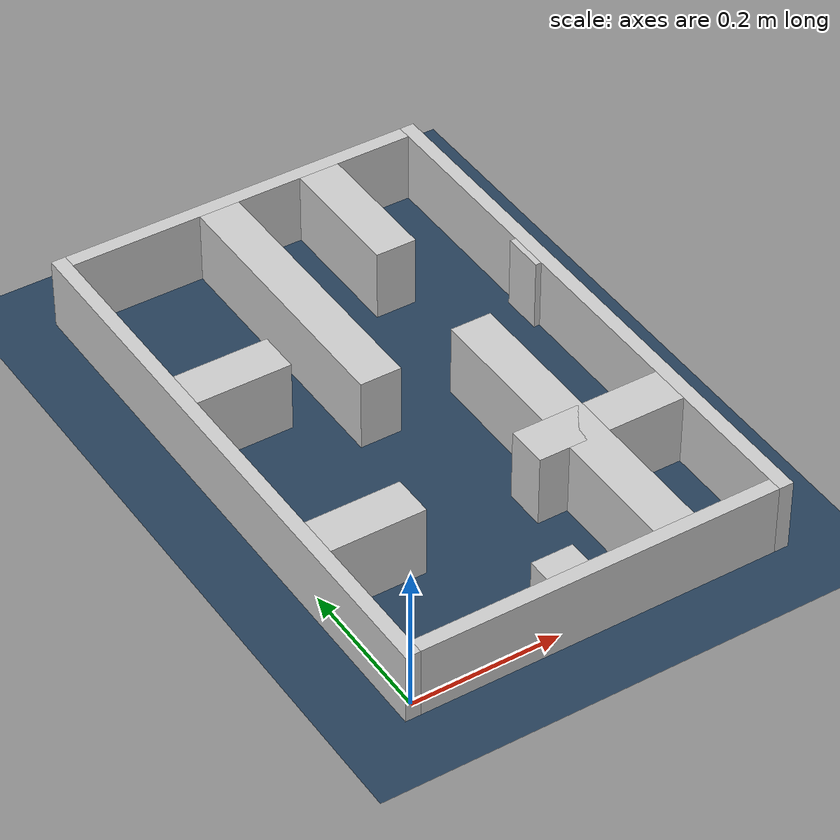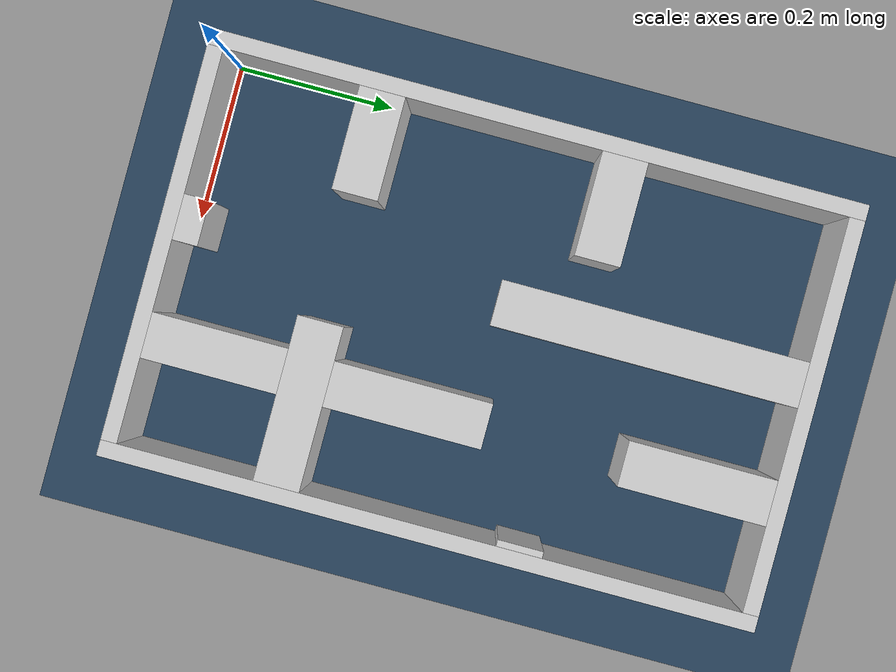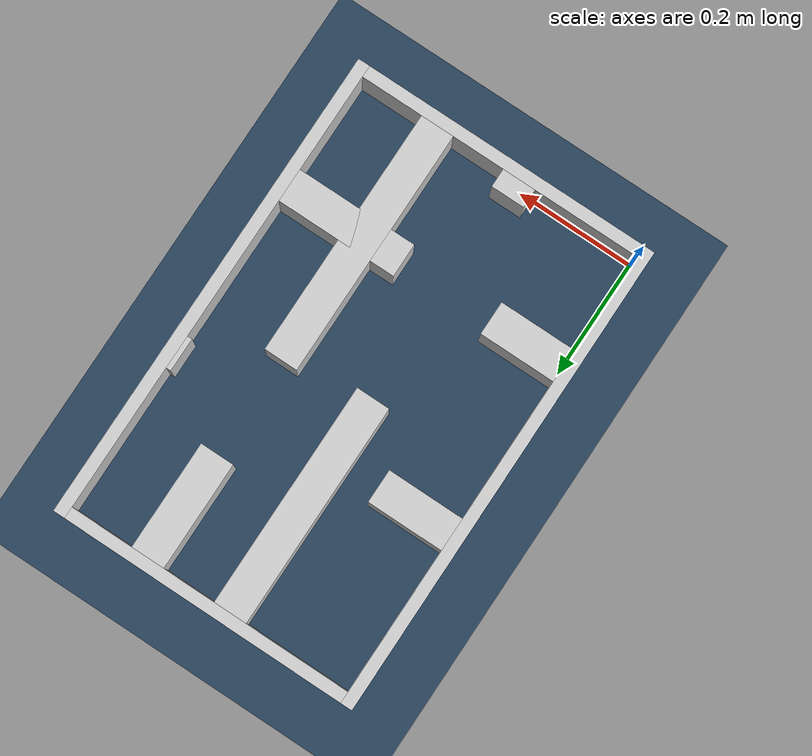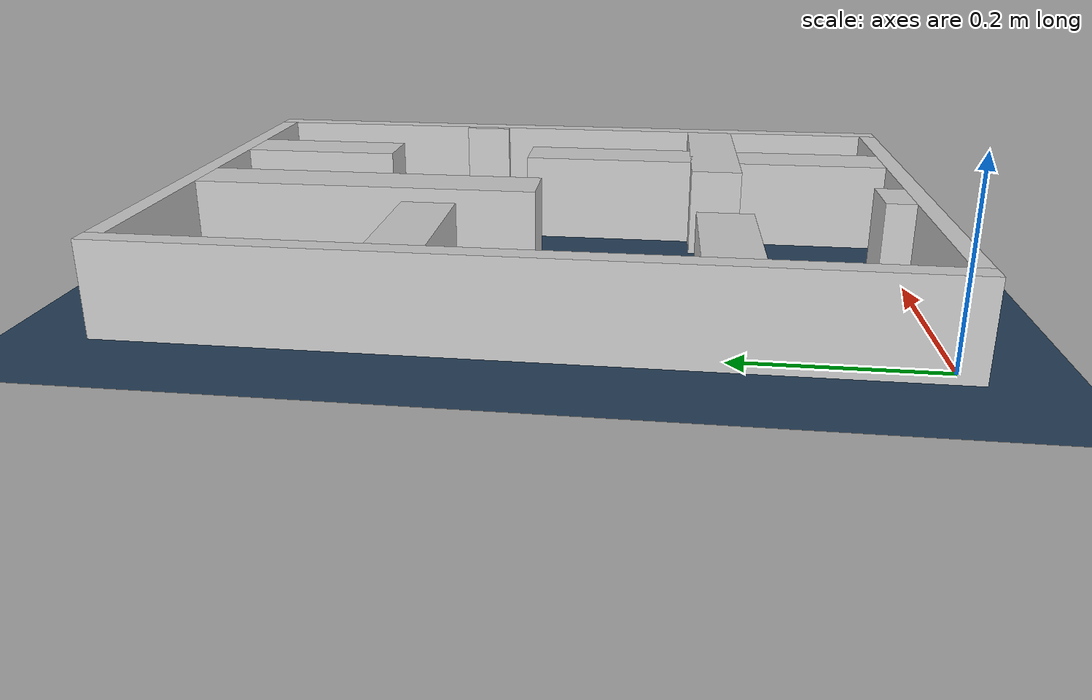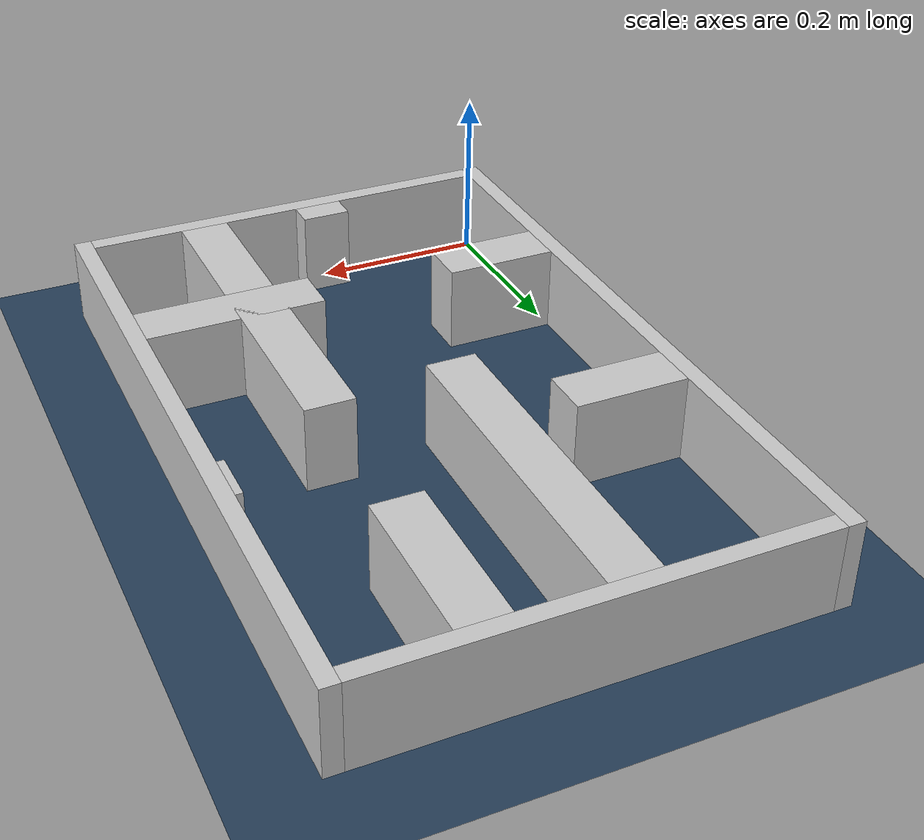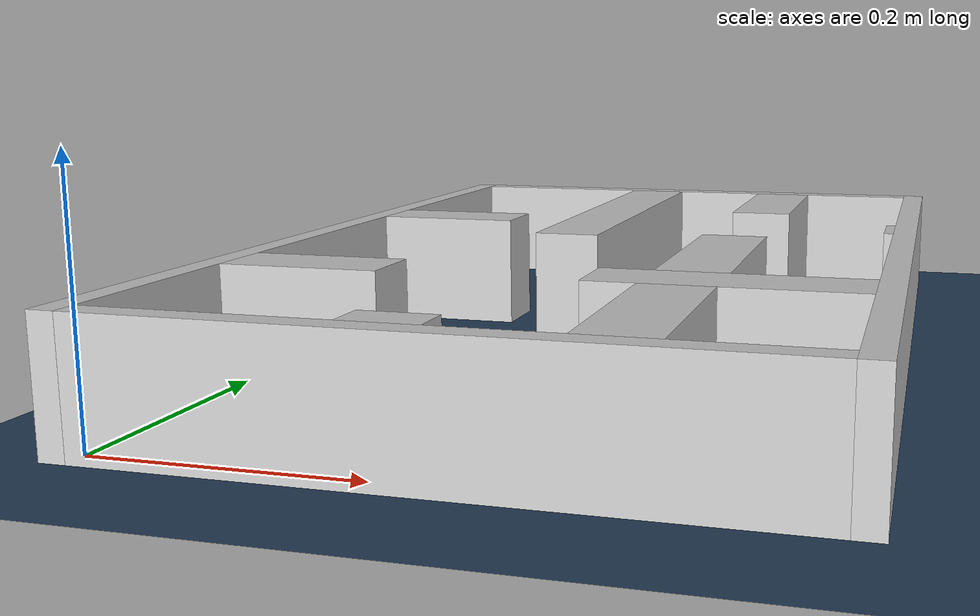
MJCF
<?xml version="1.0" ?>
<mujoco model="generated_real_template">
  <compiler angle="degree"/>
  <option timestep="0.002" integrator="implicitfast" iterations="100" cone="elliptic"/>
  <default>
    <geom density="1"/>
  </default>
  <asset>
    <texture builtin="gradient" height="3072" rgb1="0.3 0.5 0.7" rgb2="0 0 0" type="skybox" width="512"/>
    <texture builtin="checker" height="300" mark="edge" markrgb="0.8 0.8 0.8" name="groundplane" rgb1="0.2 0.3 0.4" rgb2="0.1 0.2 0.3" type="2d" width="300"/>
    <material name="groundplane" reflectance="0.2" texrepeat="5 5" texture="groundplane" texuniform="true"/>
  </asset>
  <worldbody>
    <light dir="0 0 -1" directional="true" pos="0 0 1.5"/>
    <geom name="floor" type="plane" condim="4" friction="0.5 0.005 0.001" material="groundplane" size="0 0 0.05"/>
    <body name="walls">
      <geom name="wall_boundary_left" type="box" condim="4" friction="1.0 0.005 0.0001" rgba="0.8 0.8 0.8 1" pos="-0.010000 0.387500 0.050000" euler="0 0 0.000000" size="0.010000 0.407500 0.050000"/>
      <geom name="wall_boundary_right" type="box" condim="4" friction="1.0 0.005 0.0001" rgba="0.8 0.8 0.8 1" pos="0.500000 0.387500 0.050000" euler="0 0 0.000000" size="0.010000 0.407500 0.050000"/>
      <geom name="wall_boundary_bottom" type="box" condim="4" friction="1.0 0.005 0.0001" rgba="0.8 0.8 0.8 1" pos="0.245000 -0.010000 0.050000" euler="0 0 0.000000" size="0.245000 0.010000 0.050000"/>
      <geom name="wall_boundary_top" type="box" condim="4" friction="1.0 0.005 0.0001" rgba="0.8 0.8 0.8 1" pos="0.245000 0.785000 0.050000" euler="0 0 0.000000" size="0.245000 0.010000 0.050000"/>
      <geom name="wall_inner_1_1" type="box" condim="4" friction="1.0 0.005 0.0001" rgba="0.8 0.8 0.8 1" pos="0.064427 0.197089 0.050000" euler="0 0 0.000000" size="0.064427 0.028500 0.050000"/>
      <geom name="wall_inner_1_2" type="box" condim="4" friction="1.0 0.005 0.0001" rgba="0.8 0.8 0.8 1" pos="0.387334 0.197089 0.050000" euler="0 0 0.000000" size="0.102666 0.028500 0.050000"/>
      <geom name="wall_inner_2_1" type="box" condim="4" friction="1.0 0.005 0.0001" rgba="0.8 0.8 0.8 1" pos="0.064912 0.498067 0.050000" euler="0 0 0.000000" size="0.064912 0.028500 0.050000"/>
      <geom name="wall_inner_2_2" type="box" condim="4" friction="1.0 0.005 0.0001" rgba="0.8 0.8 0.8 1" pos="0.485885 0.498067 0.050000" euler="0 0 0.000000" size="0.004115 0.028500 0.050000"/>
      <geom name="wall_inner_3_1" type="box" condim="4" friction="1.0 0.005 0.0001" rgba="0.8 0.8 0.8 1" pos="0.355056 0.211182 0.050000" euler="0 0 90.000000" size="0.211182 0.028500 0.050000"/>
      <geom name="wall_inner_3_2" type="box" condim="4" friction="1.0 0.005 0.0001" rgba="0.8 0.8 0.8 1" pos="0.355056 0.682922 0.050000" euler="0 0 90.000000" size="0.092078 0.028500 0.050000"/>
      <geom name="wall_inner_4_1" type="box" condim="4" friction="1.0 0.005 0.0001" rgba="0.8 0.8 0.8 1" pos="0.208636 0.015773 0.050000" euler="0 0 90.000000" size="0.015773 0.028500 0.050000"/>
      <geom name="wall_inner_4_2" type="box" condim="4" friction="1.0 0.005 0.0001" rgba="0.8 0.8 0.8 1" pos="0.208636 0.584450 0.050000" euler="0 0 90.000000" size="0.190550 0.028500 0.050000"/>
    </body>
  </worldbody>
</mujoco>
